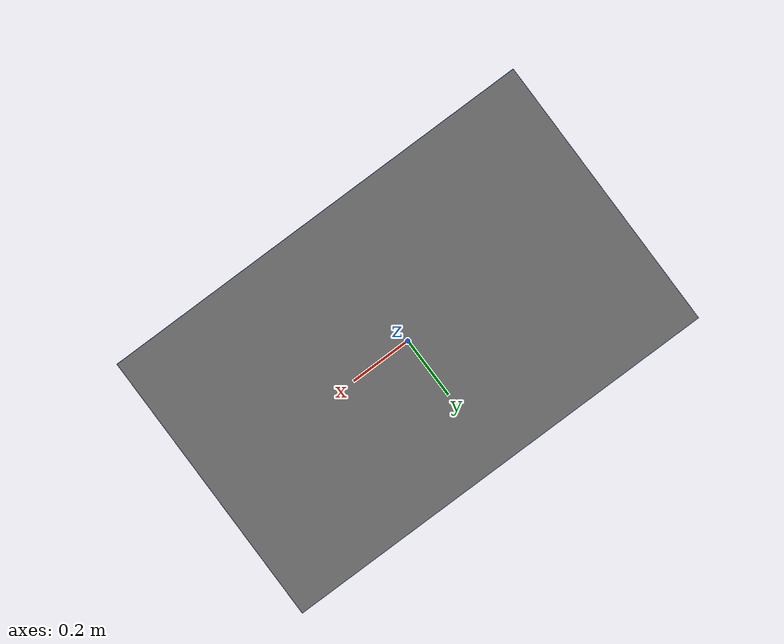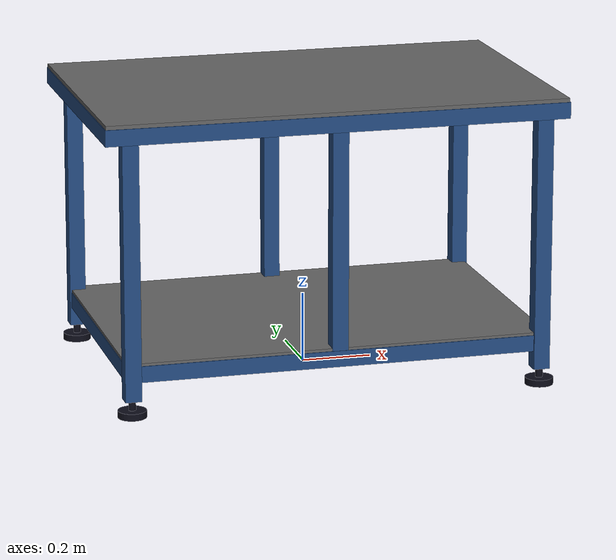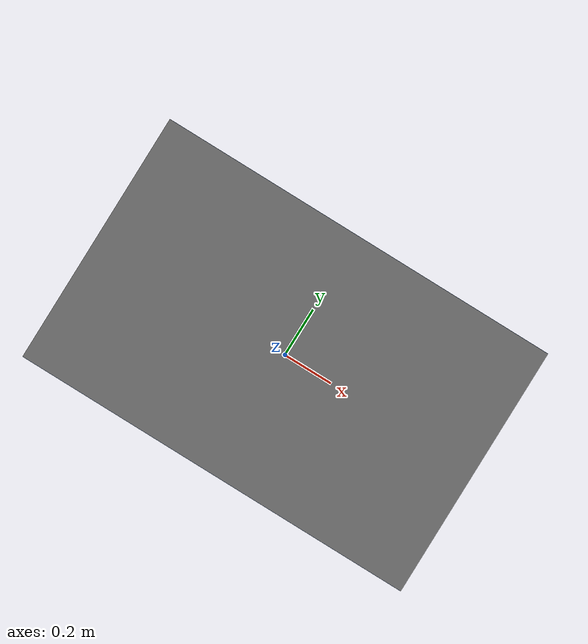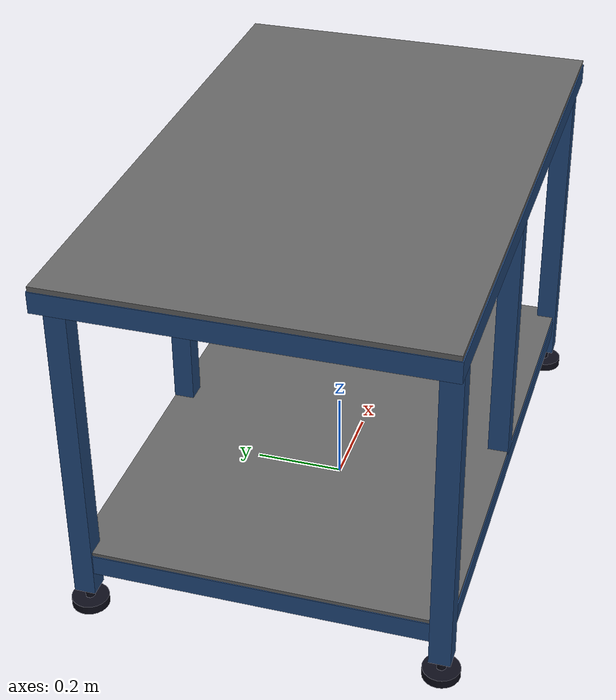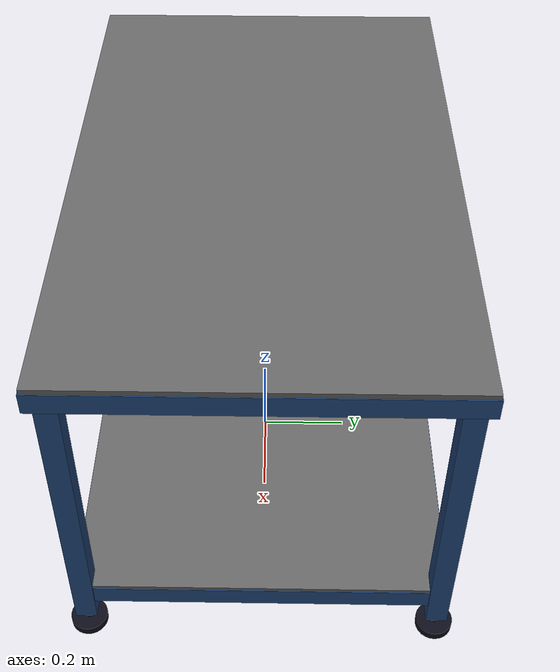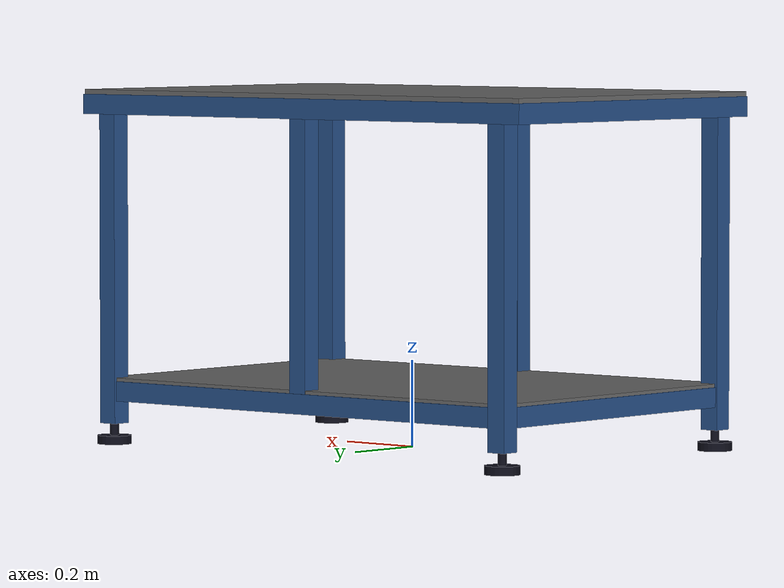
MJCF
<?xml version="1.0" encoding="utf-8"?>
<mujoco model="vention_table_top">
  <compiler angle="radian"/>

  <asset>
    <material name="vention_black" rgba="0.05 0.05 0.1 1" reflectance="0" shininess=".5"/>
    <material name="vention_white" rgba="0.4 0.4 0.4 1" reflectance="0" shininess=".1"/>
    <material name="vention_blue" rgba=".14 .30 .52 1" reflectance="10" shininess=".1"/>
  </asset>

  <worldbody>
    <body name="vention_table_top">
      <geom type="cylinder" size="0.040 0.010" pos="-.585 -.383 0.010" material="vention_black" contype="0" conaffinity="0" group="1"/>
      <geom type="cylinder" size="0.040 0.010" pos="0.585 -.383 0.010" material="vention_black" contype="0" conaffinity="0" group="1"/>
      <geom type="cylinder" size="0.040 0.010" pos="-.585 0.383 0.010" material="vention_black" contype="0" conaffinity="0" group="1"/>
      <geom type="cylinder" size="0.040 0.010" pos="0.585 0.383 0.010" material="vention_black" contype="0" conaffinity="0" group="1"/>
      <geom type="cylinder" size="0.010 0.020" pos="-.585 -.383 0.030" material="vention_black" contype="0" conaffinity="0" group="1"/>
      <geom type="cylinder" size="0.010 0.020" pos="0.585 -.383 0.030" material="vention_black" contype="0" conaffinity="0" group="1"/>
      <geom type="cylinder" size="0.010 0.020" pos="-.585 0.383 0.030" material="vention_black" contype="0" conaffinity="0" group="1"/>
      <geom type="cylinder" size="0.010 0.020" pos="0.585 0.383 0.030" material="vention_black" contype="0" conaffinity="0" group="1"/>
      <geom type="box" size="0.023 0.023 .387" pos="-.585 -.383 0.435" material="vention_blue" contype="0" conaffinity="0" group="1"/>
      <geom type="box" size="0.023 0.023 .387" pos="0.585 -.383 0.435" material="vention_blue" contype="0" conaffinity="0" group="1"/>
      <geom type="box" size="0.023 0.023 .387" pos="-.585 0.383 0.435" material="vention_blue" contype="0" conaffinity="0" group="1"/>
      <geom type="box" size="0.023 0.023 .387" pos="0.585 0.383 0.435" material="vention_blue" contype="0" conaffinity="0" group="1"/>
      <geom type="box" size="0.023 0.023 .337" pos="0 0.377 0.440" material="vention_blue" contype="0" conaffinity="0" group="1"/>
      <geom type="box" size="0.023 0.023 .337" pos="0 -.377 0.440" material="vention_blue" contype="0" conaffinity="0" group="1"/>
      <geom type="box" size="0.652 0.409 0.023" pos="0 0 0.801" material="vention_white" contype="0" conaffinity="0" group="1"/>
      <geom type="box" size="0.654 0.411 0.023" pos="0 0 0.790" material="vention_blue" contype="0" conaffinity="0" group="1"/>
      <geom type="box" size="0.602 0.399 0.005" pos="0 0 0.150" material="vention_white" contype="0" conaffinity="0" group="1"/>
      <geom type="box" size="0.604 0.401 0.023" pos="0 0 0.124" material="vention_blue" contype="0" conaffinity="0" group="1"/>

      <geom name="tabletop_collision" type="box" size="0.654 0.411 0.006" pos="0 0 0.830" rgba="0.4 0.5 0.6 0.25" contype="1" conaffinity="1" condim="4" friction="1.2 0.01 0.001" group="3"/>
    </body>
  </worldbody>
</mujoco>
